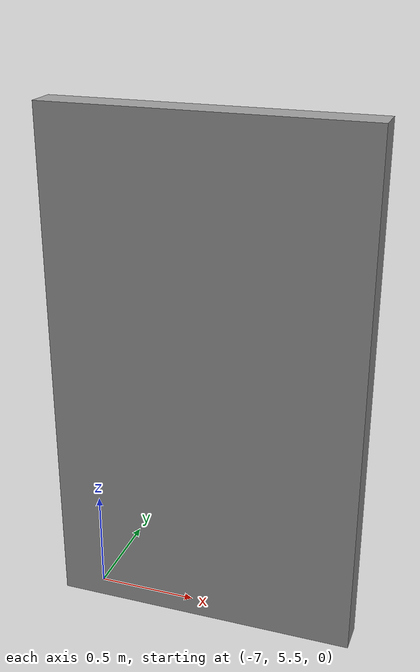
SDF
<?xml version='1.0'?>
<sdf version='1.6'>
  <model name='house_3_help_2'>
    <pose frame=''>-6.40713 5.46054 0 0 -0 0</pose>
    <link name='Wall_0'>
      <collision name='Wall_0_Collision'>
        <geometry>
          <box>
            <size>1.5 0.15 2.5</size>
          </box>
        </geometry>
        <pose frame=''>0 0 1.25 0 -0 0</pose>
      </collision>
      <visual name='Wall_0_Visual'>
        <pose frame=''>0 0 1.25 0 -0 0</pose>
        <geometry>
          <box>
            <size>1.5 0.15 2.5</size>
          </box>
        </geometry>
        <material>
          <script>
            <uri>file://media/materials/scripts/gazebo.material</uri>
            <name>Gazebo/Grey</name>
          </script>
          <ambient>1 1 1 1</ambient>
        </material>
        <meta>
          <layer>0</layer>
        </meta>
      </visual>
      <pose frame=''>0 0 0 0 -0 3.14159</pose>
    </link>
    <static>1</static>
  </model>
</sdf>
